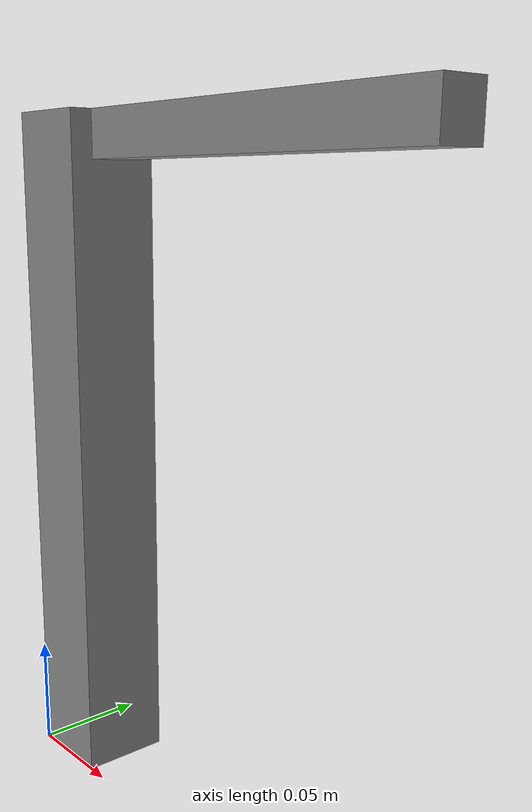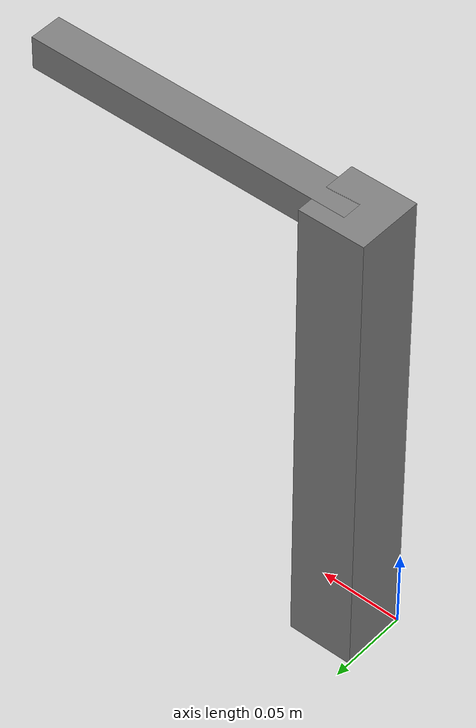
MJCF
<mujoco model="cadex-assembly">
  <compiler angle="radian" autolimits="false"/>

  <option integrator="implicitfast">
    <flag island="disable"/>
  </option>

  <size nkey="1"/>

  <worldbody>
    <body name="post">
      <inertial pos="0.02 0.02 0.15" mass="3.768" diaginertia="0.0287624 0.0287624 0.0010048"/>
      <geom name="post/collision0" size="0.02 0.02 0.15" pos="0.02 0.02 0.15" type="box" conaffinity="2147483647"/>
      <body name="arm" pos="0.02 0.01 0.28">
        <inertial pos="0.1 0.01 0.01" quat="0.5 0.5 0.5 0.5" mass="0.216" diaginertia="0.0007272 0.0007272 1.44e-05"/>
        <joint name="hinge" pos="0 0.01 0.01" axis="0 1 0" limited="true" range="-3.14159 3.14159" damping="0.0286479"/>
        <geom name="arm/collision0" size="0.1 0.01 0.01" pos="0.1 0.01 0.01" type="box" conaffinity="2147483647"/>
      </body>
    </body>
  </worldbody>

  <contact>
    <exclude name="arm|post" body1="post" body2="arm"/>
  </contact>

  <actuator>
    <general name="hinge/motor" joint="hinge" ctrllimited="false" forcelimited="true" forcerange="-2 2"/>
  </actuator>

  <sensor>
    <jointpos joint="hinge" name="obs/0"/>
    <jointvel joint="hinge" name="obs/1"/>
  </sensor>

  <keyframe>
    <key name="solved"/>
  </keyframe>
</mujoco>
